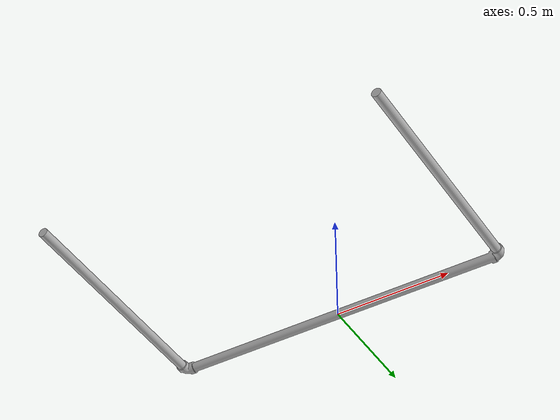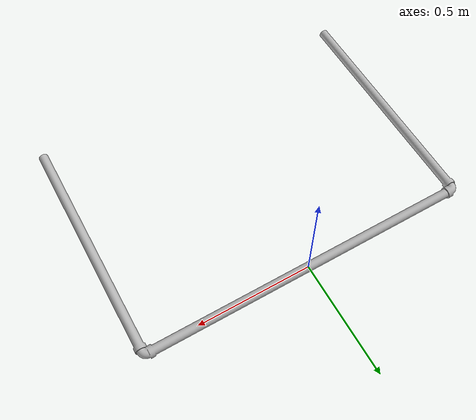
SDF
<?xml version="1.0"?>
<sdf version="1.5">
    <model name="sauvc2022_qualification">
        <static>true</static>
        <link name="link">
            <collision name="collision">
                <geometry>
                    <mesh>
                        <uri>model://sauvc2022_qualification/meshes/Qualification_Assembly.obj</uri>
                    </mesh>
                </geometry>
                <surface>
                    <friction>
                        <ode>
                            <mu>100</mu>
                            <mu2>50</mu2>
                        </ode>
                    </friction>
                </surface>
            </collision>
            <visual name="visual">
                <geometry>
                    <mesh>
                        <uri>model://sauvc2022_qualification/meshes/Qualification_Assembly.obj</uri>
                    </mesh>
                </geometry>
                <material>
                    <script>
                        <uri>model://sauvc2022_qualification/meshes/Qualification_Assembly.mtl</uri>
                        <name>sauvc2022_qualification/material</name>
                    </script>
                </material>
            </visual>
        </link>
    </model>
</sdf>
